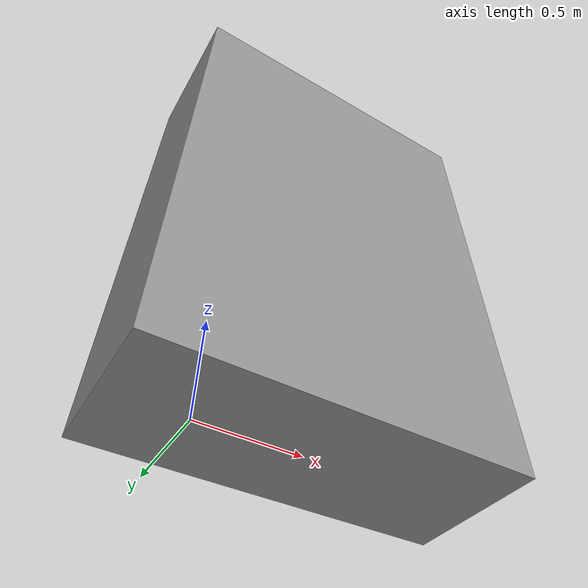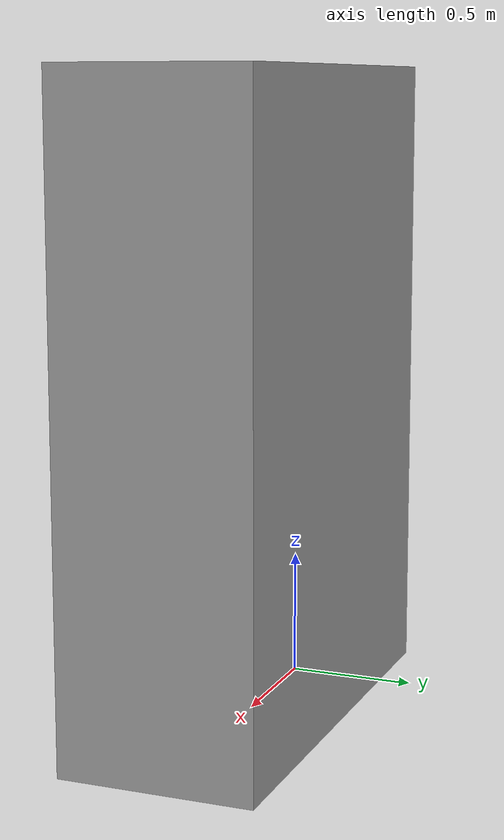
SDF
<?xml version='1.0'?>
<sdf version='1.6'>
  <model name='C205_desk'>
    <pose frame=''>0.525 0 0 0 -0 0</pose>
    <link name='Wall_18'>
      <collision name='Wall_18_Collision'>
        <geometry>
          <box>
            <size>1.8 0.75 2.5</size>
          </box>
        </geometry>
        <pose frame=''>0 0 1.25 0 -0 0</pose>
      </collision>
      <visual name='Wall_18_Visual'>
        <pose frame=''>0 0 1.25 0 -0 0</pose>
        <geometry>
          <box>
            <size>1.8 0.75 2.5</size>
          </box>
        </geometry>
        <material>
          <script>
            <uri>file://media/materials/scripts/gazebo.material</uri>
            <name>Gazebo/Grey</name>
          </script>
          <ambient>1 1 1 1</ambient>
        </material>
      </visual>
      <pose frame=''>0 0 0 0 -0 0</pose>
    </link>
    <static>1</static>
  </model>
</sdf>
